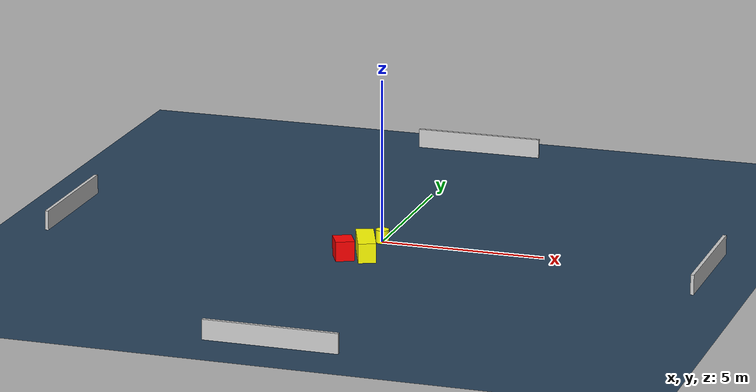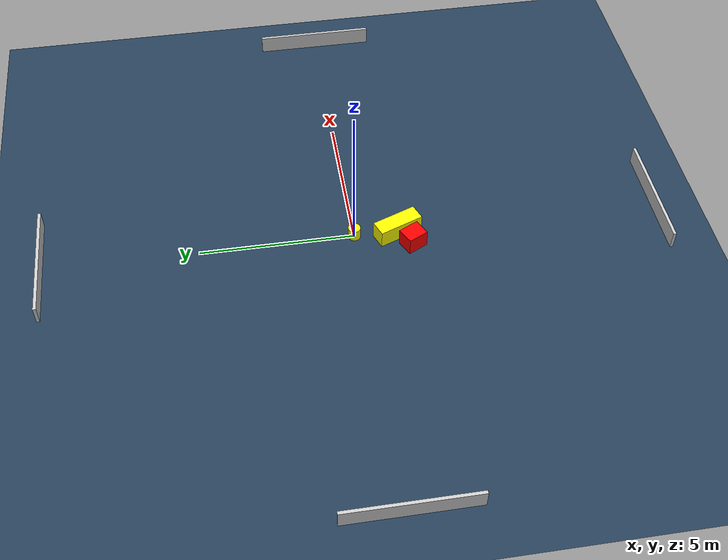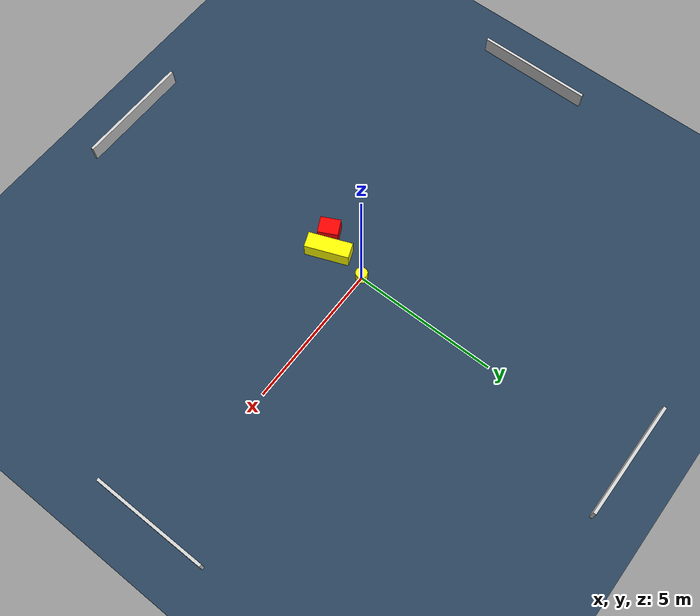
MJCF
<?xml version="1.0" ?>
<mujoco model="generated_environment">
  <option timestep="0.01" integrator="RK4" cone="elliptic"/>
  <default>
    <geom density="1"/>
  </default>
  <asset>
    <texture builtin="gradient" height="3072" name="skybox" rgb1="0.3 0.5 0.7" rgb2="0 0 0" type="skybox" width="512"/>
    <texture builtin="checker" height="300" name="groundplane" rgb1="0.2 0.3 0.4" rgb2="0.1 0.2 0.3" type="2d" width="300"/>
    <material name="groundplane" reflectance="0.2" texrepeat="5 5" texture="groundplane"/>
  </asset>
  <worldbody>
    <light dir="0 0 -1" directional="true" pos="0 0 1.5"/>
    <geom condim="3" friction="0.5 0.005 0.001" material="groundplane" name="floor" pos="0 0 0" size="0 0 0.05" type="plane"/>
    <body name="walls">
      <geom name="wall_1" condim="4" pos="-10.0 0.0 0.3" rgba="0.800000011920929 0.800000011920929 0.800000011920929 1.0" size="0.05 2.0 0.3" type="box"/>
      <geom name="wall_2" condim="4" pos="10.0 0.0 0.3" rgba="0.800000011920929 0.800000011920929 0.800000011920929 1.0" size="0.05 2.0 0.3" type="box"/>
      <geom name="wall_3" condim="4" pos="0.0 -10.0 0.3" rgba="0.800000011920929 0.800000011920929 0.800000011920929 1.0" size="2.0 0.05 0.3" type="box"/>
      <geom name="wall_4" condim="4" pos="0.0 10.0 0.3" rgba="0.800000011920929 0.800000011920929 0.800000011920929 1.0" size="2.0 0.05 0.3" type="box"/>
    </body>
    <body name="robot">
      <joint name="joint_x" type="slide" pos="0 0 0" axis="1 0 0"/>
      <joint name="joint_y" type="slide" pos="0 0 0" axis="0 1 0"/>
      <geom name="robot" type="cylinder" pos="0.0 0.0 0.2" size="0.2 0.2 0.0" mass="5.0" friction="1.0 0.005 0.0001" condim="4" rgba="1.0 1.0 0.0 1.0"/>
    </body>
    <body name="obstacle_1_movable">
      <geom name="obstacle_1_movable" condim="4" pos="-0.05957021393459521 -1.4025025757004113 0.3" euler="0 0 111.20341286310932" friction="0.0 0.005 0.001" rgba="1.0 1.0 0.0 1.0" size="0.7495889501570099 0.26848330206022114 0.3" type="box" mass="0.1"/>
      <joint type="free"/>
    </body>
    <body name="obstacle_2_static">
      <geom name="obstacle_2_static" condim="4" pos="-0.6154830524471638 -1.8118255186707144 0.3" euler="0 0 116.73808197535425" friction="0.0 0.005 0.001" rgba="1.0 0.0 0.0 1.0" size="0.344902540636839 0.28494894448296476 0.3" type="box"/>
    </body>
  </worldbody>
  <actuator>
    <motor name="actuator_x" joint="joint_x" gear="1" ctrlrange="-1 1"/>
    <motor name="actuator_y" joint="joint_y" gear="1" ctrlrange="-1 1"/>
  </actuator>
</mujoco>
